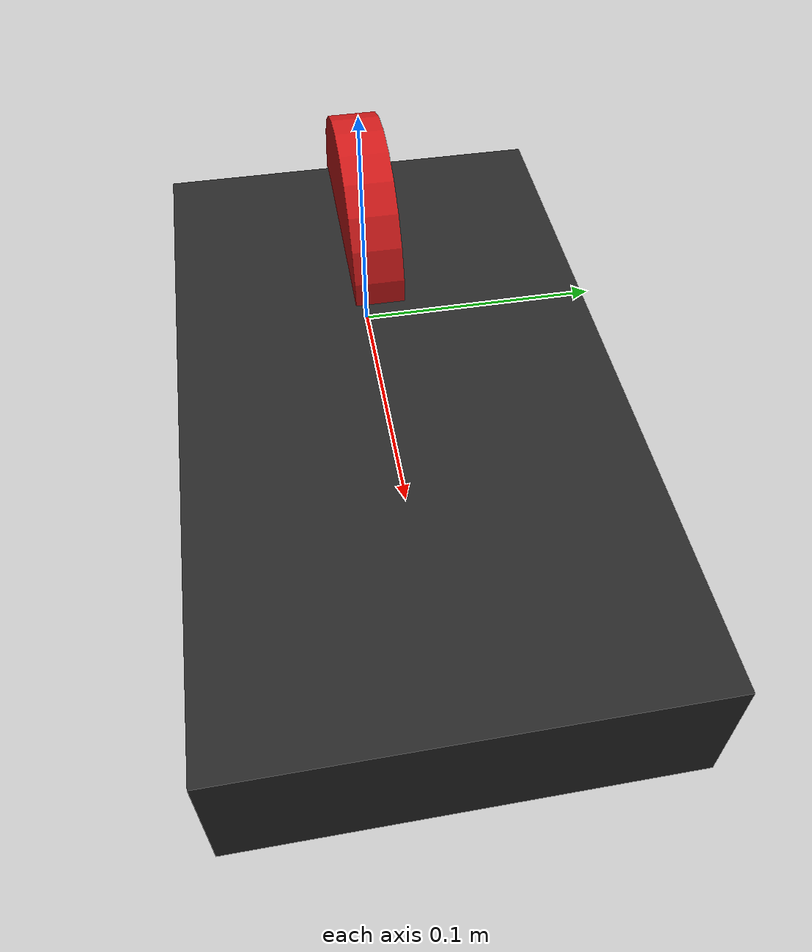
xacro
<?xml version="1.0"?>
<robot xmlns:xacro="http://www.ros.org/wiki/xacro" name="jetracer">

  <!-- ================== Tunable geometry ================== -->
  <!-- Measure these on your actual JetRacer (meters). -->
  <xacro:property name="wheelbase"       value="0.173"/>  <!-- front axle to rear axle -->
  <xacro:property name="track_width"     value="0.125"/>  <!-- left wheel to right wheel -->
  <xacro:property name="wheel_radius"    value="0.04673"/>
  <xacro:property name="wheel_width"     value="0.01835"/>
  <xacro:property name="base_length"     value="0.258"/>
  <xacro:property name="base_width"      value="0.15"/>
  <xacro:property name="base_height"     value="0.05"/>

  <material name="dark"><color rgba="0.15 0.15 0.15 1"/></material>
  <material name="red"><color rgba="0.8 0.1 0.1 1"/></material>

  <!-- base_link at center of rear axle, on the ground projection -->
  <link name="base_link">
    <visual>
      <origin xyz="${wheelbase/2} 0 ${base_height/2}" rpy="0 0 0"/>
      <geometry><box size="${base_length} ${base_width} ${base_height}"/></geometry>
      <material name="dark"/>
    </visual>
  </link>

  <!-- ===== Virtual joints the bicycle controller drives ===== -->
  <!-- Single virtual steering joint (revolute about Z) at the front -->
  <link name="virtual_steer_link"/>
  <joint name="virtual_steering_joint" type="revolute">
    <parent link="base_link"/>
    <child link="virtual_steer_link"/>
    <origin xyz="${wheelbase} 0 ${wheel_radius}" rpy="0 0 0"/>
    <axis xyz="0 0 1"/>
    <limit lower="-0.6" upper="0.6" effort="10.0" velocity="10.0"/>
  </joint>

  <!-- Single virtual traction wheel (continuous about Y) at the rear -->
  <link name="virtual_traction_link">
    <visual>
      <origin xyz="0 0 0" rpy="1.5708 0 0"/>
      <geometry><cylinder radius="${wheel_radius}" length="${wheel_width}"/></geometry>
      <material name="red"/>
    </visual>
  </link>
  <joint name="virtual_traction_joint" type="continuous">
    <parent link="base_link"/>
    <child link="virtual_traction_link"/>
    <origin xyz="0 0 ${wheel_radius}" rpy="0 0 0"/>
    <axis xyz="0 1 0"/>
  </joint>

  <!-- ================== ros2_control ================== -->
  <ros2_control name="JetracerSystem" type="system">
    <hardware>
      <plugin>jetracer_control/JetracerHardware</plugin>
      <param name="i2c_bus">1</param>
      <param name="i2c_address">64</param>
      <param name="steering_channel">0</param>
      <param name="throttle_channel">1</param>
      <param name="pwm_frequency">50.0</param>

      <!-- Steering calibration (TUNE THESE) -->
      <param name="steer_center_us">1600.0</param>
      <param name="steer_us_per_rad">500.0</param>
      <param name="steer_min_us">1100.0</param>
      <param name="steer_max_us">2100.0</param>

      <!-- Throttle calibration (TUNE THESE; start gentle) -->
      <param name="throttle_neutral_us">1500.0</param>
      <param name="throttle_us_per_rad_per_s">8.0</param>
      <param name="throttle_min_us">1000.0</param>
      <param name="throttle_max_us">2000.0</param>
    </hardware>

    <joint name="virtual_steering_joint">
      <command_interface name="position">
        <param name="min">-0.6</param>
        <param name="max">0.6</param>
      </command_interface>
      <state_interface name="position"/>
    </joint>

    <joint name="virtual_traction_joint">
      <command_interface name="velocity">
        <param name="min">-30.0</param>
        <param name="max">30.0</param>
      </command_interface>
      <state_interface name="velocity"/>
      <state_interface name="position"/>
    </joint>
  </ros2_control>

</robot>
